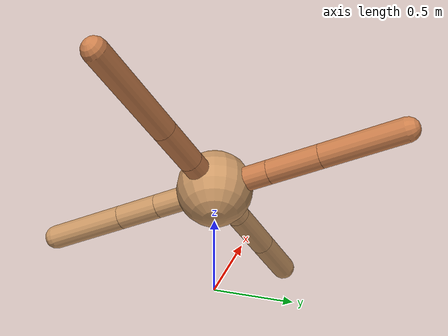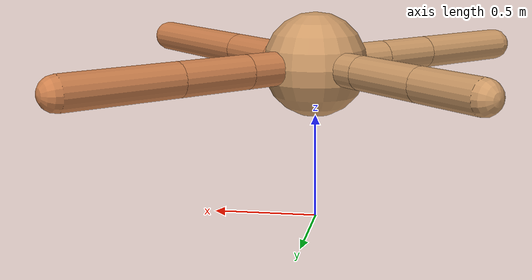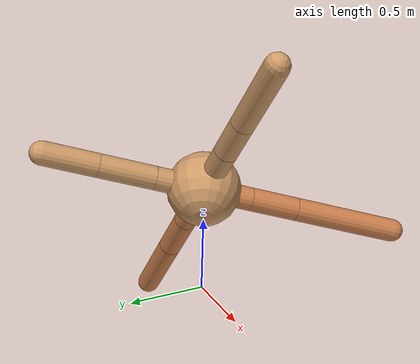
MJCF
<mujoco model="ant">
  <compiler angle="degree" coordinate="local" inertiafromgeom="true" />
  <option integrator="RK4" timestep="0.01" />
  <custom>
    <numeric data="0.0 0.0 0.55 1.0 0.0 0.0 0.0 0.0 1.0 0.0 -1.0 0.0 -1.0 0.0 1.0" name="init_qpos" />
  </custom>
  <default>
    <joint armature="1" damping="1" limited="true" />
    <geom conaffinity="0" condim="3" density="5.0" friction="1.5 0.1 0.1" margin="0.01" rgba="0.8 0.6 0.4 1" />
  </default>
  <worldbody>
    <body name="torso" pos="0 0 0.75">
      <geom name="torso_geom" pos="0 0 0" size="0.25" type="sphere" />

      <body name="front_left_leg" pos="0 0 0">
        <geom fromto="0.0 0.0 0.0 0.27578685874055503 0.27578685874055503 0.0" name="aux_1_geom" size="0.08" type="capsule" rgba=".8 .5 .3 1" />
        <body name="aux_1" pos="0.27578685874055503 0.27578685874055503 0.0">
          <joint axis="0 0 1" name="hip_1" pos="0.0 0.0 0.0" range="-40 40" type="hinge" />
          <geom fromto="0.0 0.0 0.0 0.24806662704924876 0.24806662704924876 0.0" name="left_leg_geom" size="0.08" type="capsule" rgba=".8 .5 .3 1" />
          <body pos="0.24806662704924876 0.24806662704924876 0.0" name="front_left_foot">
            <joint axis="-1 1 0" name="ankle_1" pos="0.0 0.0 0.0" range="30 100" type="hinge" />
            <geom fromto="0.0 0.0 0.0 0.3930030575995927 0.3930030575995927 0.0" name="left_ankle_geom" size="0.08" type="capsule" rgba=".8 .5 .3 1" />
          </body>
        </body>
      </body>
      <body name="front_right_leg" pos="0 0 0">
        <geom fromto="0.0 0.0 0.0 -0.2406675850552872 0.2406675850552872 0.0" name="aux_2_geom" size="0.08" type="capsule" />
        <body name="aux_2" pos="-0.2406675850552872 0.2406675850552872 0.0">
          <joint axis="0 0 1" name="hip_2" pos="0.0 0.0 0.0" range="-40 40" type="hinge" />
          <geom fromto="0.0 0.0 0.0 -0.2673276291564416 0.2673276291564416 0.0" name="right_leg_geom" size="0.08" type="capsule" />
          <body pos="-0.2673276291564416 0.2673276291564416 0.0" name="front_right_foot">
            <joint axis="1 1 0" name="ankle_2" pos="0.0 0.0 0.0" range="-100 -30" type="hinge" />
            <geom fromto="0.0 0.0 0.0 -0.2570601794029222 0.2570601794029222 0.0" name="right_ankle_geom" size="0.08" type="capsule" />
          </body>
        </body>
      </body>
      <body name="left_back_leg" pos="0 0 0">
        <geom fromto="0.0 0.0 0.0 -0.29532547149250976 -0.29532547149250976 0.0" name="aux_3_geom" size="0.08" type="capsule" />
        <body name="aux_3" pos="-0.29532547149250976 -0.29532547149250976 0.0">
          <joint axis="0 0 1" name="hip_3" pos="0.0 0.0 0.0" range="-40 40" type="hinge" />
          <geom fromto="0.0 0.0 0.0 -0.2027986533123386 -0.2027986533123386 0.0" name="back_leg_geom" size="0.08" type="capsule" />
          <body pos="-0.2027986533123386 -0.2027986533123386 0.0" name="left_back_foot">
            <joint axis="-1 1 0" name="ankle_3" pos="0.0 0.0 0.0" range="-100 -30" type="hinge" />
            <geom fromto="0.0 0.0 0.0 -0.3727911707714514 -0.3727911707714514 0.0" name="third_ankle_geom" size="0.08" type="capsule" />
          </body>
        </body>
      </body>
      <body name="right_back_leg" pos="0 0 0">
        <geom fromto="0.0 0.0 0.0 0.2324265794467343 -0.2324265794467343 0.0" name="aux_4_geom" size="0.08" type="capsule" rgba=".8 .5 .3 1" />
        <body name="aux_4" pos="0.2324265794467343 -0.2324265794467343 0.0">
          <joint axis="0 0 1" name="hip_4" pos="0.0 0.0 0.0" range="-40 40" type="hinge" />
          <geom fromto="0.0 0.0 0.0 0.2349219667667447 -0.2349219667667447 0.0" name="rightback_leg_geom" size="0.08" type="capsule" rgba=".8 .5 .3 1" />
          <body pos="0.2349219667667447 -0.2349219667667447 0.0" name="right_back_foot">
            <joint axis="1 1 0" name="ankle_4" pos="0.0 0.0 0.0" range="30 100" type="hinge" />
            <geom fromto="0.0 0.0 0.0 0.529692858442176 -0.529692858442176 0.0" name="fourth_ankle_geom" size="0.08" type="capsule" rgba=".8 .5 .3 1" />
          </body>
        </body>
      </body>
    </body>
  </worldbody>
  <actuator>
    <motor ctrllimited="true" ctrlrange="-1.0 1.0" joint="hip_4" gear="150" />
    <motor ctrllimited="true" ctrlrange="-1.0 1.0" joint="ankle_4" gear="150" />
    <motor ctrllimited="true" ctrlrange="-1.0 1.0" joint="hip_1" gear="150" />
    <motor ctrllimited="true" ctrlrange="-1.0 1.0" joint="ankle_1" gear="150" />
    <motor ctrllimited="true" ctrlrange="-1.0 1.0" joint="hip_2" gear="150" />
    <motor ctrllimited="true" ctrlrange="-1.0 1.0" joint="ankle_2" gear="150" />
    <motor ctrllimited="true" ctrlrange="-1.0 1.0" joint="hip_3" gear="150" />
    <motor ctrllimited="true" ctrlrange="-1.0 1.0" joint="ankle_3" gear="150" />
  </actuator>
</mujoco>
